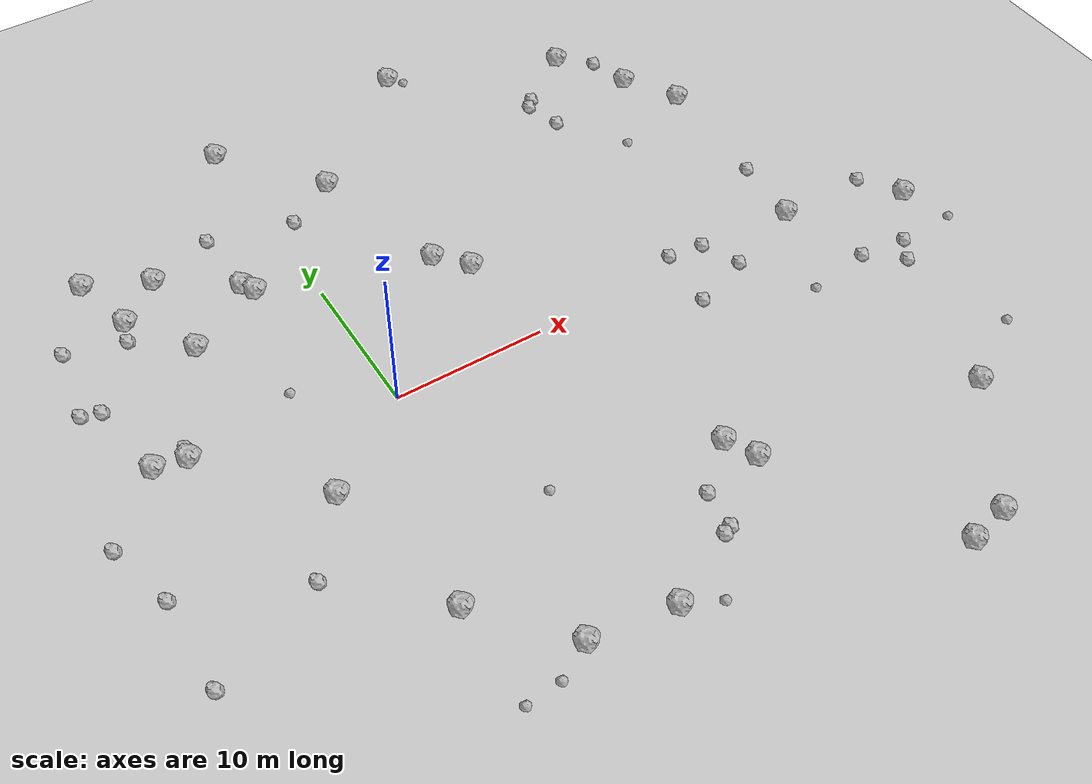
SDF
<sdf version="1.6">
 <world name="default">
  <include><uri>model://custom_ground</uri></include>
  <include><uri>model://sun</uri></include>
  <model name="rock1_0_0">
   <include><uri>model://rock1</uri><pose>0.5436891589005484 -19.710436343456372 0.5 0 0 0</pose></include>
  </model>
  <model name="rock1_0_1">
   <include><uri>model://rock1</uri><pose>5.9481144371615 -20.47905737511263 0.5 0 0 0</pose></include>
  </model>
  <model name="rock1_0_2">
   <include><uri>model://rock1</uri><pose>15.432644895932683 -14.83096497329507 0.5 0 0 0</pose></include>
  </model>
  <model name="rock1_0_3">
   <include><uri>model://rock1</uri><pose>-12.649335454473515 18.247128236137108 0.5 0 0 0</pose></include>
  </model>
  <model name="rock1_0_4">
   <include><uri>model://rock1</uri><pose>4.7766505931447405 18.629230287345763 0.5 0 0 0</pose></include>
  </model>
  <model name="rock1_0_5">
   <include><uri>model://rock1</uri><pose>-11.45997675912621 13.950966450524675 0.5 0 0 0</pose></include>
  </model>
  <model name="rock1_0_6">
   <include><uri>model://rock1</uri><pose>27.80985052088363 17.131061885188302 0.5 0 0 0</pose></include>
  </model>
  <model name="rock1_0_7">
   <include><uri>model://rock1</uri><pose>-8.62290181521637 16.32638972399357 0.5 0 0 0</pose></include>
  </model>
  <model name="rock1_0_8">
   <include><uri>model://rock1</uri><pose>-14.313720812322025 2.596264725335942 0.5 0 0 0</pose></include>
  </model>
  <model name="rock1_0_9">
   <include><uri>model://rock1</uri><pose>-6.22529883139606 -4.503889598051998 0.5 0 0 0</pose></include>
  </model>
  <model name="rock1_0_10">
   <include><uri>model://rock1</uri><pose>22.05983166761191 -25.614470193877658 0.5 0 0 0</pose></include>
  </model>
  <model name="rock1_0_11">
   <include><uri>model://rock1</uri><pose>14.446679946876571 -12.886116685419427 0.5 0 0 0</pose></include>
  </model>
  <model name="rock1_0_12">
   <include><uri>model://rock1</uri><pose>29.990400547254346 13.610071219841572 0.5 0 0 0</pose></include>
  </model>
  <model name="rock1_0_13">
   <include><uri>model://rock1</uri><pose>37.09907679336349 -2.4016692077286272 0.5 0 0 0</pose></include>
  </model>
  <model name="rock1_0_14">
   <include><uri>model://rock1</uri><pose>-0.4489782275225025 25.15402276094551 0.5 0 0 0</pose></include>
  </model>
  <model name="rock1_0_15">
   <include><uri>model://rock1</uri><pose>-3.976762199150375 -14.483736279361157 0.5 0 0 0</pose></include>
  </model>
  <model name="rock1_0_16">
   <include><uri>model://rock1</uri><pose>29.26333759204355 0.17785817182323171 0.5 0 0 0</pose></include>
  </model>
  <model name="rock1_0_17">
   <include><uri>model://rock1</uri><pose>24.996905013464477 21.760724918413857 0.5 0 0 0</pose></include>
  </model>
  <model name="rock1_0_18">
   <include><uri>model://rock1</uri><pose>30.197020932012435 -17.292593775076188 0.5 0 0 0</pose></include>
  </model>
  <model name="rock1_0_19">
   <include><uri>model://rock1</uri><pose>7.4349943004889205 8.923732833685428 0.5 0 0 0</pose></include>
  </model>
  <model name="rock1_0_20">
   <include><uri>model://rock1</uri><pose>24.76779827454395 -24.992839351688005 0.5 0 0 0</pose></include>
  </model>
  <model name="rock1_0_21">
   <include><uri>model://rock1</uri><pose>-4.015428753021155 13.08320571354001 0.5 0 0 0</pose></include>
  </model>
  <model name="rock1_0_22">
   <include><uri>model://rock1</uri><pose>-8.539670050877692 9.776573494086591 0.5 0 0 0</pose></include>
  </model>
  <model name="rock1_0_23">
   <include><uri>model://rock1</uri><pose>-12.292430489702568 2.216230114633106 0.5 0 0 0</pose></include>
  </model>
  <model name="rock1_0_24">
   <include><uri>model://rock1</uri><pose>13.441195437993976 26.213151501946278 0.5 0 0 0</pose></include>
  </model>
  <model name="rock1_0_25">
   <include><uri>model://rock1</uri><pose>9.178263115533632 6.953983589904851 0.5 0 0 0</pose></include>
  </model>
  <model name="rock1_0_26">
   <include><uri>model://rock1</uri><pose>-3.4977417187345026 12.22442860827595 0.5 0 0 0</pose></include>
  </model>
  <model name="rock2_0_0">
   <include><uri>model://rock2</uri><pose>-17.067872874895972 -12.093478937199453 0.3 0 0 0</pose></include>
  </model>
  <model name="rock2_0_1">
   <include><uri>model://rock2</uri><pose>-12.221839839201166 3.037260400345424 0.3 0 0 0</pose></include>
  </model>
  <model name="rock2_0_2">
   <include><uri>model://rock2</uri><pose>11.429680444975595 -15.36248811988543 0.3 0 0 0</pose></include>
  </model>
  <model name="rock2_0_3">
   <include><uri>model://rock2</uri><pose>29.587842951909963 4.9961832443208465 0.3 0 0 0</pose></include>
  </model>
  <model name="rock2_0_4">
   <include><uri>model://rock2</uri><pose>1.2283540100630965 16.530834887366495 0.3 0 0 0</pose></include>
  </model>
  <model name="rock2_0_5">
   <include><uri>model://rock2</uri><pose>11.201110361580021 -17.83792181532484 0.3 0 0 0</pose></include>
  </model>
  <model name="rock2_0_6">
   <include><uri>model://rock2</uri><pose>-18.350927363838302 -1.4310723819435403 0.3 0 0 0</pose></include>
  </model>
  <model name="rock2_0_7">
   <include><uri>model://rock2</uri><pose>-15.72434446690753 13.566229614591222 0.3 0 0 0</pose></include>
  </model>
  <model name="rock2_0_8">
   <include><uri>model://rock2</uri><pose>35.29225529605584 0.26603646452941376 0.3 0 0 0</pose></include>
  </model>
  <model name="rock2_0_9">
   <include><uri>model://rock2</uri><pose>19.949489925971143 -3.2325881748356053 0.3 0 0 0</pose></include>
  </model>
  <model name="rock2_0_10">
   <include><uri>model://rock2</uri><pose>20.443099651406186 18.312797939917388 0.3 0 0 0</pose></include>
  </model>
  <model name="rock2_0_11">
   <include><uri>model://rock2</uri><pose>22.727179587942523 0.71020809595651 0.3 0 0 0</pose></include>
  </model>
  <model name="rock2_0_12">
   <include><uri>model://rock2</uri><pose>34.148757270329455 -5.805367408889005 0.3 0 0 0</pose></include>
  </model>
  <model name="rock2_0_13">
   <include><uri>model://rock2</uri><pose>21.004424090755684 18.9019299895685 0.3 0 0 0</pose></include>
  </model>
  <model name="rock2_0_14">
   <include><uri>model://rock2</uri><pose>-9.753945009051282 -9.050095072073418 0.3 0 0 0</pose></include>
  </model>
  <model name="rock2_0_15">
   <include><uri>model://rock2</uri><pose>21.17870126048902 15.827224401449357 0.3 0 0 0</pose></include>
  </model>
  <model name="rock2_0_16">
   <include><uri>model://rock2</uri><pose>20.325881987126195 0.9892337154398732 0.3 0 0 0</pose></include>
  </model>
  <model name="rock2_0_17">
   <include><uri>model://rock2</uri><pose>-11.959821115137556 12.484914317507908 0.3 0 0 0</pose></include>
  </model>
  <model name="rock2_0_18">
   <include><uri>model://rock2</uri><pose>-15.335588733735243 8.058663935871081 0.3 0 0 0</pose></include>
  </model>
  <model name="rock2_0_19">
   <include><uri>model://rock2</uri><pose>23.816605624402293 -1.8312833187542097 0.3 0 0 0</pose></include>
  </model>
  <model name="rock2_0_20">
   <include><uri>model://rock2</uri><pose>26.977890824735923 19.980336879272564 0.3 0 0 0</pose></include>
  </model>
  <model name="rock2_0_21">
   <include><uri>model://rock2</uri><pose>-17.09273692142004 -5.897810283982661 0.3 0 0 0</pose></include>
  </model>
  <model name="rock2_0_22">
   <include><uri>model://rock2</uri><pose>30.95790330653054 -5.430497090081705 0.3 0 0 0</pose></include>
  </model>
  <model name="rock2_0_23">
   <include><uri>model://rock2</uri><pose>-16.53004821058895 8.437026331258771 0.3 0 0 0</pose></include>
  </model>
  <model name="rock2_0_24">
   <include><uri>model://rock2</uri><pose>33.187050619514906 -7.28292431695229 0.3 0 0 0</pose></include>
  </model>
  <model name="rock2_0_25">
   <include><uri>model://rock2</uri><pose>-4.350299544477661 17.924787294820966 0.3 0 0 0</pose></include>
  </model>
  <model name="rock2_0_26">
   <include><uri>model://rock2</uri><pose>10.630970598116104 -18.08390676121338 0.3 0 0 0</pose></include>
  </model>
  <model name="rock3_0_0">
   <include><uri>model://rock3</uri><pose>-1.81205648999374 -20.967254577260675 0.2 0 0 0</pose></include>
  </model>
  <model name="rock3_0_1">
   <include><uri>model://rock3</uri><pose>24.294358376243544 11.526904978821626 0.2 0 0 0</pose></include>
  </model>
  <model name="rock3_0_2">
   <include><uri>model://rock3</uri><pose>8.148145809220175 -21.52344293271583 0.2 0 0 0</pose></include>
  </model>
  <model name="rock3_0_3">
   <include><uri>model://rock3</uri><pose>38.15179034865989 -5.638713922640484 0.2 0 0 0</pose></include>
  </model>
  <model name="rock3_0_4">
   <include><uri>model://rock3</uri><pose>4.007075606035034 -10.532256558939292 0.2 0 0 0</pose></include>
  </model>
  <model name="rock3_0_5">
   <include><uri>model://rock3</uri><pose>14.198202405862126 25.419148451766908 0.2 0 0 0</pose></include>
  </model>
  <model name="rock3_0_6">
   <include><uri>model://rock3</uri><pose>34.97044580056028 -14.524111346203156 0.2 0 0 0</pose></include>
  </model>
  <model name="rock3_0_7">
   <include><uri>model://rock3</uri><pose>-4.11979583610556 -21.180463702387126 0.2 0 0 0</pose></include>
  </model>
  <model name="rock3_0_8">
   <include><uri>model://rock3</uri><pose>-5.316920276711594 3.5772868221576104 0.2 0 0 0</pose></include>
  </model>
  <model name="rock3_0_9">
   <include><uri>model://rock3</uri><pose>26.65830170070833 -6.153220534333165 0.2 0 0 0</pose></include>
  </model>
 </world>
</sdf>
